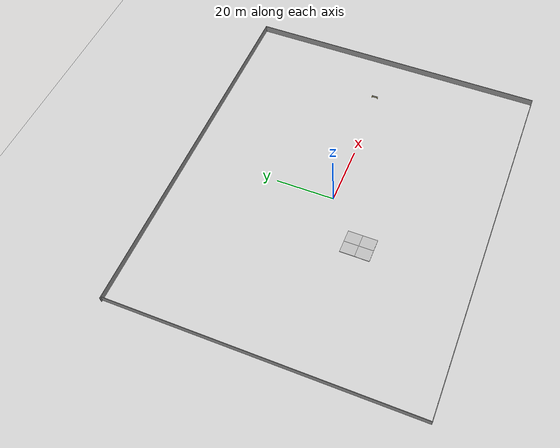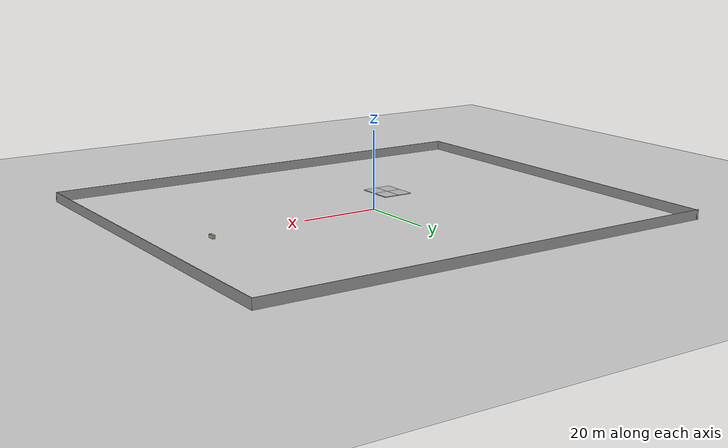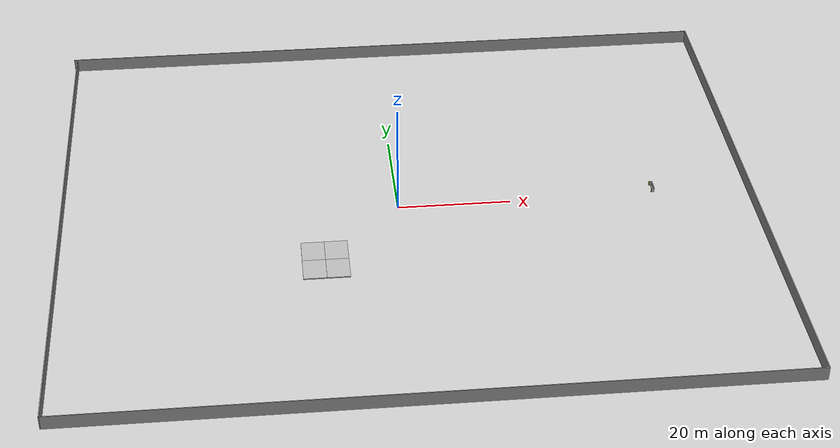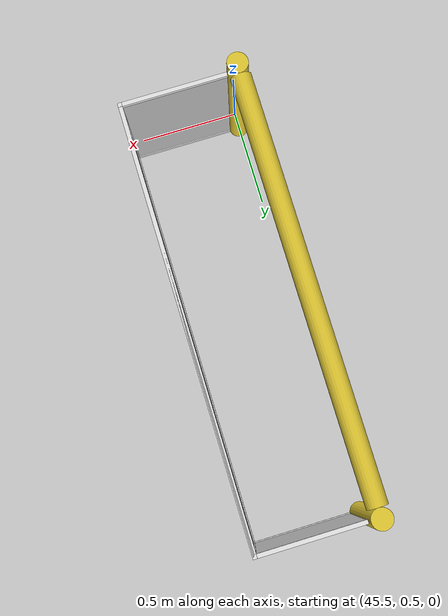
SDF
<sdf version="1.6">
 <world name="default">
  <light name="sun" type="directional">
   <pose>0 0 10 0 -0 0</pose>
   <diffuse>0.8 0.8 0.8 1</diffuse>
   <specular>0.2 0.2 0.2 1</specular>
   <attenuation>
    <range>1000</range>
    <constant>0.9</constant>
    <linear>0.01</linear>
    <quadratic>0.001</quadratic>
   </attenuation>
   <direction>-0.5 0.1 -0.9</direction>
  </light>
  <model name="ground_plane">
   <static>1</static>
   <link name="link">
    <collision name="collision">
     <geometry><plane><normal>0 0 1</normal><size>100 100</size></plane></geometry>
     <surface>
      <friction><ode><mu>8.0</mu><mu2>8.0</mu2><slip1>0.0</slip1><slip2>0.0</slip2></ode></friction>
      <contact>
       <ode><kp>100000.0</kp><kd>20.0</kd><max_vel>0.01</max_vel><min_depth>0.001</min_depth></ode>
      </contact>
     </surface>
    </collision>
    <visual name="visual">
     <cast_shadows>0</cast_shadows>
     <geometry><plane><normal>0 0 1</normal><size>100 100</size></plane></geometry>
     <material>
      <script><uri>file://media/materials/scripts/gazebo.material</uri><name>Gazebo/Grey</name></script>
     </material>
    </visual>
   </link>
  </model>
  <gravity>0 0 -9.8</gravity>
  <magnetic_field>6e-06 2.3e-05 -4.2e-05</magnetic_field>
  <atmosphere type="adiabatic"/>
  <physics name="default_physics" default="0" type="ode">
   <max_step_size>0.01</max_step_size>
   <real_time_factor>1</real_time_factor>
   <real_time_update_rate>100</real_time_update_rate>
  </physics>
  <scene><ambient>0.4 0.4 0.4 1</ambient><background>0.7 0.7 0.7 1</background><shadows>1</shadows></scene>
  <spherical_coordinates>
   <surface_model>EARTH_WGS84</surface_model>
   <latitude_deg>0</latitude_deg>
   <longitude_deg>0</longitude_deg>
   <elevation>0</elevation>
   <heading_deg>0</heading_deg>
  </spherical_coordinates>
  <model name="Untitled">
   <pose>1.72088 0.025843 0 0 -0 0</pose>
   <link name="Wall_2">
    <collision name="Wall_2_Collision">
     <geometry><box><size>122.25 0.15 2.5</size></box></geometry>
     <pose>0 0 1.25 0 -0 0</pose>
    </collision>
    <visual name="Wall_2_Visual">
     <pose>0 0 1.25 0 -0 0</pose>
     <geometry><box><size>122.25 0.15 2.5</size></box></geometry>
     <material>
      <script><uri>file://media/materials/scripts/gazebo.material</uri><name>Gazebo/Grey</name></script>
      <ambient>1 1 1 1</ambient>
     </material>
     <meta><layer>0</layer></meta>
    </visual>
    <pose>-4e-06 51.675 0 0 -0 0</pose>
   </link>
   <link name="Wall_4">
    <collision name="Wall_4_Collision">
     <geometry><box><size>103.5 0.15 2.5</size></box></geometry>
     <pose>0 0 1.25 0 -0 0</pose>
    </collision>
    <visual name="Wall_4_Visual">
     <pose>0 0 1.25 0 -0 0</pose>
     <geometry><box><size>103.5 0.15 2.5</size></box></geometry>
     <material>
      <script><uri>file://media/materials/scripts/gazebo.material</uri><name>Gazebo/Grey</name></script>
      <ambient>1 1 1 1</ambient>
     </material>
     <meta><layer>0</layer></meta>
    </visual>
    <pose>61.05 2e-06 0 0 0 -1.5708</pose>
   </link>
   <link name="Wall_5">
    <collision name="Wall_5_Collision">
     <geometry><box><size>121.75 0.15 2.5</size></box></geometry>
     <pose>0 0 1.25 0 -0 0</pose>
    </collision>
    <visual name="Wall_5_Visual">
     <pose>0 0 1.25 0 -0 0</pose>
     <geometry><box><size>121.75 0.15 2.5</size></box></geometry>
     <material>
      <script><uri>file://media/materials/scripts/gazebo.material</uri><name>Gazebo/Grey</name></script>
      <ambient>1 1 1 1</ambient>
     </material>
     <meta><layer>0</layer></meta>
    </visual>
    <pose>0.249996 -51.675 0 0 -0 3.14159</pose>
   </link>
   <link name="Wall_6">
    <collision name="Wall_6_Collision">
     <geometry><box><size>103.5 0.15 2.5</size></box></geometry>
     <pose>0 0 1.25 0 -0 0</pose>
    </collision>
    <visual name="Wall_6_Visual">
     <pose>0 0 1.25 0 -0 0</pose>
     <geometry><box><size>103.5 0.15 2.5</size></box></geometry>
     <material>
      <script><uri>file://media/materials/scripts/gazebo.material</uri><name>Gazebo/Grey</name></script>
      <ambient>1 1 1 1</ambient>
     </material>
     <meta><layer>0</layer></meta>
    </visual>
    <pose>-60.55 2e-06 0 0 -0 1.5708</pose>
   </link>
   <static>1</static>
  </model>
  <model name="mud_box">
   <static>1</static>
   <link name="link">
    <collision name="collision"><geometry><box><size>8 10 0.2</size></box></geometry></collision>
    <visual name="visual_1">
     <pose>-2 2.5 0 0 -0 0</pose>
     <cast_shadows>0</cast_shadows>
     <geometry><box><size>4 5 0.2</size></box></geometry>
     <material>
      <script>
       <uri>model://mud_box/materials/scripts</uri>
       <uri>model://mud_box/materials/textures</uri>
       <name>vrc/mud</name>
      </script>
     </material>
    </visual>
    <visual name="visual_2">
     <pose>2 2.5 0 0 -0 0</pose>
     <cast_shadows>0</cast_shadows>
     <geometry><box><size>4 5 0.2</size></box></geometry>
     <material>
      <script>
       <uri>model://mud_box/materials/scripts</uri>
       <uri>model://mud_box/materials/textures</uri>
       <name>vrc/mud</name>
      </script>
     </material>
    </visual>
    <visual name="visual_3">
     <pose>2 -2.5 0 0 -0 0</pose>
     <cast_shadows>0</cast_shadows>
     <geometry><box><size>4 5 0.2</size></box></geometry>
     <material>
      <script>
       <uri>model://mud_box/materials/scripts</uri>
       <uri>model://mud_box/materials/textures</uri>
       <name>vrc/mud</name>
      </script>
     </material>
    </visual>
    <visual name="visual_4">
     <pose>-2 -2.5 0 0 -0 0</pose>
     <cast_shadows>0</cast_shadows>
     <geometry><box><size>4 5 0.2</size></box></geometry>
     <material>
      <script>
       <uri>model://mud_box/materials/scripts</uri>
       <uri>model://mud_box/materials/textures</uri>
       <name>vrc/mud</name>
      </script>
     </material>
    </visual>
   </link>
   <pose>-13.6175 -13.8985 0 0 -0 0</pose>
  </model>
  <model name="robocup_3d_goal">
   <static>1</static>
   <link name="left_post">
    <pose>0 1.05 0.45 0 -0 0</pose>
    <collision name="collision">
     <geometry><cylinder><radius>0.05</radius><length>0.9</length></cylinder></geometry>
    </collision>
    <visual name="visual">
     <geometry><cylinder><radius>0.05</radius><length>0.9</length></cylinder></geometry>
     <material>
      <script><uri>file://media/materials/scripts/gazebo.material</uri><name>Gazebo/ZincYellow</name></script>
     </material>
    </visual>
   </link>
   <link name="left_support_horiz_lower">
    <pose>0.3 1.05 0.01 0 -0 0</pose>
    <collision name="collision"><geometry><box><size>0.5 0.02 0.02</size></box></geometry></collision>
    <visual name="visual">
     <geometry><box><size>0.5 0.02 0.02</size></box></geometry>
     <material>
      <script><uri>file://media/materials/scripts/gazebo.material</uri><name>Gazebo/White</name></script>
     </material>
    </visual>
   </link>
   <link name="left_support_horiz_upper">
    <pose>0.3 1.05 0.79 0 -0 0</pose>
    <collision name="collision"><geometry><box><size>0.5 0.02 0.02</size></box></geometry></collision>
    <visual name="visual">
     <geometry><box><size>0.5 0.02 0.02</size></box></geometry>
     <material>
      <script><uri>file://media/materials/scripts/gazebo.material</uri><name>Gazebo/White</name></script>
     </material>
    </visual>
   </link>
   <link name="left_support_vertical">
    <pose>0.56 1.05 0.4 3.14159 1.57079 3.14159</pose>
    <collision name="collision"><geometry><box><size>0.8 0.02 0.02</size></box></geometry></collision>
    <visual name="visual">
     <geometry><box><size>0.8 0.02 0.02</size></box></geometry>
     <material>
      <script><uri>file://media/materials/scripts/gazebo.material</uri><name>Gazebo/White</name></script>
     </material>
    </visual>
   </link>
   <link name="right_support_horiz_lower">
    <pose>0.3 -1.05 0.01 0 -0 0</pose>
    <collision name="collision"><geometry><box><size>0.5 0.02 0.02</size></box></geometry></collision>
    <visual name="visual">
     <geometry><box><size>0.5 0.02 0.02</size></box></geometry>
     <material>
      <script><uri>file://media/materials/scripts/gazebo.material</uri><name>Gazebo/White</name></script>
     </material>
    </visual>
   </link>
   <link name="right_support_horiz_upper">
    <pose>0.3 -1.05 0.79 0 -0 0</pose>
    <collision name="collision"><geometry><box><size>0.5 0.02 0.02</size></box></geometry></collision>
    <visual name="visual">
     <geometry><box><size>0.5 0.02 0.02</size></box></geometry>
     <material>
      <script><uri>file://media/materials/scripts/gazebo.material</uri><name>Gazebo/White</name></script>
     </material>
    </visual>
   </link>
   <link name="right_support_vertical">
    <pose>0.56 -1.05 0.4 3.14159 1.57079 3.14159</pose>
    <collision name="collision"><geometry><box><size>0.8 0.02 0.02</size></box></geometry></collision>
    <visual name="visual">
     <geometry><box><size>0.8 0.02 0.02</size></box></geometry>
     <material>
      <script><uri>file://media/materials/scripts/gazebo.material</uri><name>Gazebo/White</name></script>
     </material>
    </visual>
   </link>
   <link name="center_support_horiz_lower">
    <pose>0.56 0 0.01 3.14159 1.57079 3.14159</pose>
    <collision name="collision"><geometry><box><size>0.02 2.08 0.02</size></box></geometry></collision>
    <visual name="visual">
     <geometry><box><size>0.02 2.08 0.02</size></box></geometry>
     <material>
      <script><uri>file://media/materials/scripts/gazebo.material</uri><name>Gazebo/White</name></script>
     </material>
    </visual>
   </link>
   <link name="center_support_horiz_upper">
    <pose>0.56 0 0.79 3.14159 1.57079 3.14159</pose>
    <collision name="collision"><geometry><box><size>0.02 2.08 0.02</size></box></geometry></collision>
    <visual name="visual">
     <geometry><box><size>0.02 2.08 0.02</size></box></geometry>
     <material>
      <script><uri>file://media/materials/scripts/gazebo.material</uri><name>Gazebo/White</name></script>
     </material>
    </visual>
   </link>
   <link name="right_post">
    <pose>0 -1.05 0.45 0 -0 0</pose>
    <collision name="collision">
     <geometry><cylinder><radius>0.05</radius><length>0.9</length></cylinder></geometry>
    </collision>
    <visual name="visual">
     <geometry><cylinder><radius>0.05</radius><length>0.9</length></cylinder></geometry>
     <material>
      <script><uri>file://media/materials/scripts/gazebo.material</uri><name>Gazebo/ZincYellow</name></script>
     </material>
    </visual>
   </link>
   <link name="crossbar">
    <pose>0 0 0.85 1.57 1.57 0</pose>
    <collision name="collision">
     <geometry><cylinder><radius>0.05</radius><length>2</length></cylinder></geometry>
    </collision>
    <visual name="visual">
     <geometry><cylinder><radius>0.05</radius><length>2</length></cylinder></geometry>
     <material>
      <script><uri>file://media/materials/scripts/gazebo.material</uri><name>Gazebo/ZincYellow</name></script>
     </material>
    </visual>
   </link>
   <link name="center_net">
    <pose>0.56 0 0.4 0 -0 0</pose>
    <collision name="collision"><geometry><box><size>0.01 2.1 0.8</size></box></geometry></collision>
    <visual name="visual">
     <geometry><box><size>0.01 2.1 0.8</size></box></geometry>
     <material>
      <script>
       <uri>model://robocup09_spl_field/materials/scripts/</uri>
       <uri>model://robocup09_spl_field/materials/textures/</uri>
       <name>RoboCup/Net</name>
      </script>
     </material>
    </visual>
   </link>
   <link name="left_net">
    <pose>0.3 1.05 0.4 0 -0 0</pose>
    <collision name="collision"><geometry><box><size>0.5 0.01 0.76</size></box></geometry></collision>
    <visual name="visual">
     <geometry><box><size>0.5 0.01 0.76</size></box></geometry>
     <material>
      <script>
       <uri>model://robocup09_spl_field/materials/scripts/</uri>
       <uri>model://robocup09_spl_field/materials/textures/</uri>
       <name>RoboCup/Net</name>
      </script>
     </material>
    </visual>
   </link>
   <link name="right_net">
    <pose>0.3 -1.05 0.4 0 -0 0</pose>
    <collision name="collision"><geometry><box><size>0.5 0.01 0.76</size></box></geometry></collision>
    <visual name="visual">
     <geometry><box><size>0.5 0.01 0.76</size></box></geometry>
     <material>
      <script>
       <uri>model://robocup09_spl_field/materials/scripts/</uri>
       <uri>model://robocup09_spl_field/materials/textures/</uri>
       <name>RoboCup/Net</name>
      </script>
     </material>
    </visual>
   </link>
   <pose>45.4995 1.62442 0 0 -0 0</pose>
  </model>
 </world>
</sdf>
